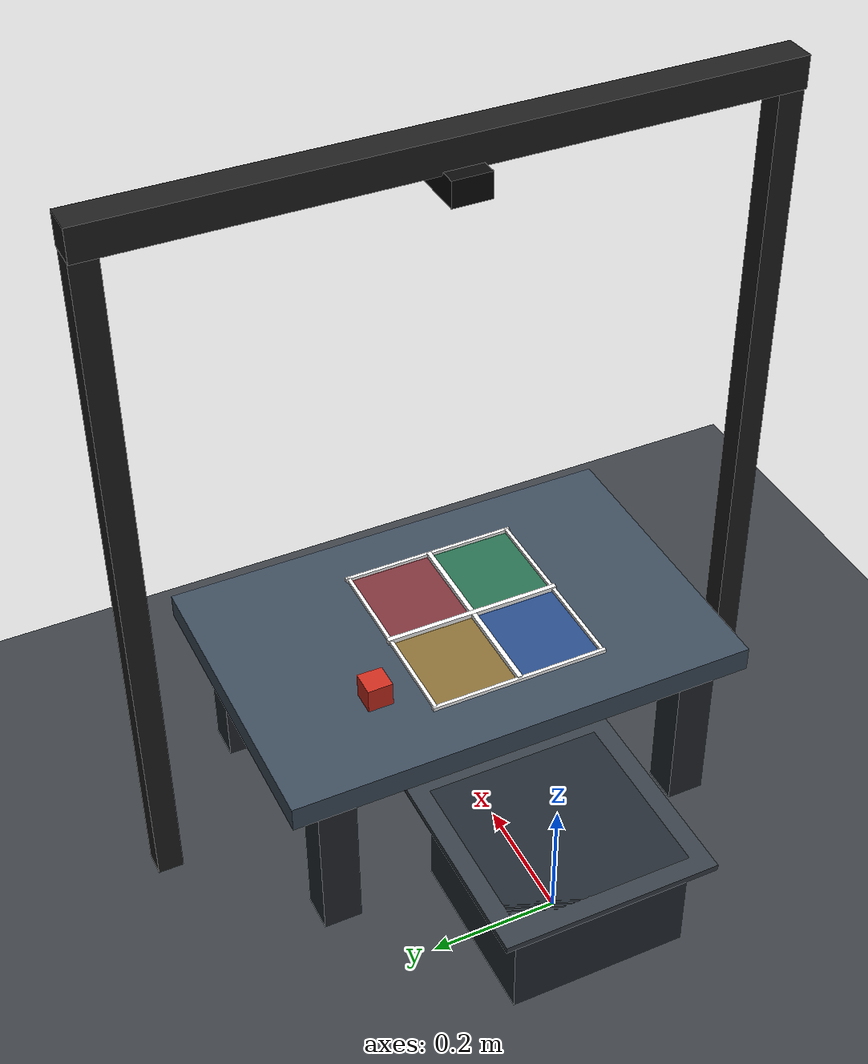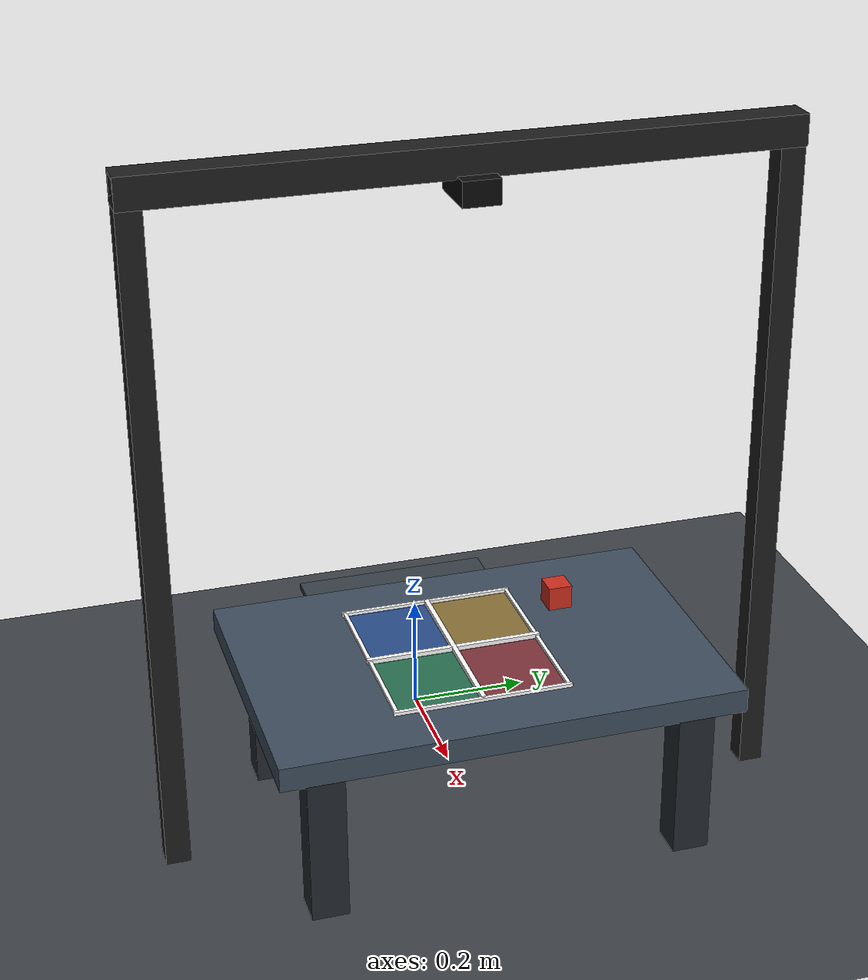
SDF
<?xml version="1.0"?>
<sdf version="1.8">
  <world name="empty">
    <physics name="1ms" type="ignored">
      <max_step_size>0.001</max_step_size>
      <real_time_factor>1.0</real_time_factor>
      <dart>
        <solver>
          <solver_type>pgs</solver_type>
        </solver>
        <collision_detector>ode</collision_detector>
      </dart>
    </physics>

    <plugin
      filename="ignition-gazebo-physics-system"
      name="gz::sim::systems::Physics"/>
    <plugin
      filename="ignition-gazebo-user-commands-system"
      name="gz::sim::systems::UserCommands"/>
    <plugin
      filename="ignition-gazebo-scene-broadcaster-system"
      name="gz::sim::systems::SceneBroadcaster"/>
    <plugin
      filename="ignition-gazebo-contact-system"
      name="gz::sim::systems::Contact"/>
    <plugin
      filename="ignition-gazebo-sensors-system"
      name="gz::sim::systems::Sensors">
      <render_engine>ogre</render_engine>
    </plugin>

    <scene>
      <ambient>0.42 0.42 0.42 1</ambient>
      <background>0.08 0.10 0.12 1</background>
      <shadows>true</shadows>
    </scene>

    <light type="directional" name="sun">
      <cast_shadows>true</cast_shadows>
      <pose>0 0 10 0 0 0</pose>
      <diffuse>0.75 0.75 0.75 1</diffuse>
      <specular>0.20 0.20 0.20 1</specular>
      <direction>-0.4 0.2 -0.9</direction>
    </light>
    <light type="point" name="work_light">
      <pose>0.45 0 1.31 0 0 0</pose>
      <cast_shadows>true</cast_shadows>
      <diffuse>0.85 0.85 0.82 1</diffuse>
      <specular>0.25 0.25 0.25 1</specular>
      <attenuation>
        <range>4.0</range>
        <constant>0.5</constant>
        <linear>0.1</linear>
        <quadratic>0.02</quadratic>
      </attenuation>
    </light>

    <model name="ground_plane">
      <static>true</static>
      <link name="link">
        <collision name="collision">
          <geometry><plane><normal>0 0 1</normal><size>6 6</size></plane></geometry>
        </collision>
        <visual name="visual">
          <geometry><plane><normal>0 0 1</normal><size>6 6</size></plane></geometry>
          <material>
            <ambient>0.20 0.22 0.24 1</ambient>
            <diffuse>0.24 0.26 0.28 1</diffuse>
          </material>
        </visual>
      </link>
    </model>

    <include>
      <uri>model://sensoragent_robot_base_frame</uri>
    </include>
    <include>
      <uri>model://sensoragent_workbench</uri>
      <pose>0.34 0 0 0 0 0</pose>
    </include>
    <include>
      <uri>model://sensoragent_target_grid_2x2</uri>
      <pose>0.34 -0.03 0.302 0 0 0</pose>
    </include>
    <include>
      <uri>model://sensoragent_rgbd_rig</uri>
    </include>

    <include>
      <uri>model://sensoragent_part_block</uri>
      <name>block_01</name>
      <pose>0.24 0.18 0.320 0 0 0</pose>
    </include>
  </world>
</sdf>

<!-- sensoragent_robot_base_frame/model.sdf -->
<sdf version="1.8">
  <model name="sensoragent_robot_base_frame">
    <static>true</static>
    <link name="pedestal">
      <collision name="body_collision">
        <pose>0 0 0.09 0 0 0</pose>
        <geometry><box><size>0.28 0.28 0.18</size></box></geometry>
      </collision>
      <visual name="body_visual">
        <pose>0 0 0.09 0 0 0</pose>
        <geometry><box><size>0.28 0.28 0.18</size></box></geometry>
        <material>
          <ambient>0.10 0.12 0.14 1</ambient>
          <diffuse>0.14 0.17 0.20 1</diffuse>
          <specular>0.30 0.30 0.30 1</specular>
        </material>
      </visual>
      <visual name="top_plate_visual">
        <pose>0 0 0.175 0 0 0</pose>
        <geometry><box><size>0.34 0.34 0.01</size></box></geometry>
        <material>
          <ambient>0.16 0.18 0.20 1</ambient>
          <diffuse>0.22 0.25 0.28 1</diffuse>
          <specular>0.45 0.45 0.45 1</specular>
        </material>
      </visual>
    </link>
  </model>
</sdf>

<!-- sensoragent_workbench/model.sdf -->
<sdf version="1.8">
  <model name="sensoragent_workbench">
    <static>true</static>
    <link name="workbench">
      <collision name="top_collision">
        <pose>0 0 0.28 0 0 0</pose>
        <geometry>
          <box>
            <size>0.5 0.75 0.04</size>
          </box>
        </geometry>
        <surface>
          <friction>
            <ode>
              <mu>20.0</mu>
              <mu2>20.0</mu2>
              <slip1>0.0</slip1>
              <slip2>0.0</slip2>
            </ode>
            <torsional>
              <coefficient>1.0</coefficient>
              <patch_radius>0.02</patch_radius>
              <surface_radius>0.02</surface_radius>
              <use_patch_radius>true</use_patch_radius>
              <ode>
                <slip>0.0</slip>
              </ode>
            </torsional>
          </friction>
        </surface>
      </collision>
      <visual name="top_visual">
        <pose>0 0 0.28 0 0 0</pose>
        <geometry>
          <box>
            <size>0.5 0.75 0.04</size>
          </box>
        </geometry>
        <material>
          <ambient>0.18 0.22 0.26 1</ambient>
          <diffuse>0.24 0.30 0.36 1</diffuse>
          <specular>0.35 0.35 0.35 1</specular>
        </material>
      </visual>

      <collision name="front_left_leg_collision">
        <pose>-0.20 0.30 0.13 0 0 0</pose>
        <geometry><box><size>0.06 0.06 0.26</size></box></geometry>
      </collision>
      <visual name="front_left_leg_visual">
        <pose>-0.20 0.30 0.13 0 0 0</pose>
        <geometry><box><size>0.06 0.06 0.26</size></box></geometry>
        <material>
          <ambient>0.10 0.12 0.14 1</ambient>
          <diffuse>0.14 0.16 0.18 1</diffuse>
        </material>
      </visual>

      <collision name="front_right_leg_collision">
        <pose>0.20 0.30 0.13 0 0 0</pose>
        <geometry><box><size>0.06 0.06 0.26</size></box></geometry>
      </collision>
      <visual name="front_right_leg_visual">
        <pose>0.20 0.30 0.13 0 0 0</pose>
        <geometry><box><size>0.06 0.06 0.26</size></box></geometry>
        <material>
          <ambient>0.10 0.12 0.14 1</ambient>
          <diffuse>0.14 0.16 0.18 1</diffuse>
        </material>
      </visual>

      <collision name="back_left_leg_collision">
        <pose>-0.20 -0.30 0.13 0 0 0</pose>
        <geometry><box><size>0.06 0.06 0.26</size></box></geometry>
      </collision>
      <visual name="back_left_leg_visual">
        <pose>-0.20 -0.30 0.13 0 0 0</pose>
        <geometry><box><size>0.06 0.06 0.26</size></box></geometry>
        <material>
          <ambient>0.10 0.12 0.14 1</ambient>
          <diffuse>0.14 0.16 0.18 1</diffuse>
        </material>
      </visual>

      <collision name="back_right_leg_collision">
        <pose>0.20 -0.30 0.13 0 0 0</pose>
        <geometry><box><size>0.06 0.06 0.26</size></box></geometry>
      </collision>
      <visual name="back_right_leg_visual">
        <pose>0.20 -0.30 0.13 0 0 0</pose>
        <geometry><box><size>0.06 0.06 0.26</size></box></geometry>
        <material>
          <ambient>0.10 0.12 0.14 1</ambient>
          <diffuse>0.14 0.16 0.18 1</diffuse>
        </material>
      </visual>
    </link>
  </model>
</sdf>

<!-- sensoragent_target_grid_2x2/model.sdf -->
<sdf version="1.8">
  <model name="sensoragent_target_grid_2x2">
    <static>true</static>
    <link name="grid">
      <visual name="area_1_visual">
        <pose>-0.08 -0.07 0.0005 0 0 0</pose>
        <geometry><plane><normal>0 0 1</normal><size>0.155 0.135</size></plane></geometry>
        <material>
          <ambient>0.10 0.34 0.80 0.45</ambient>
          <diffuse>0.10 0.34 0.80 0.45</diffuse>
        </material>
      </visual>
      <visual name="area_2_visual">
        <pose>0.08 -0.07 0.0005 0 0 0</pose>
        <geometry><plane><normal>0 0 1</normal><size>0.155 0.135</size></plane></geometry>
        <material>
          <ambient>0.10 0.65 0.30 0.45</ambient>
          <diffuse>0.10 0.65 0.30 0.45</diffuse>
        </material>
      </visual>
      <visual name="area_3_visual">
        <pose>-0.08 0.07 0.0005 0 0 0</pose>
        <geometry><plane><normal>0 0 1</normal><size>0.155 0.135</size></plane></geometry>
        <material>
          <ambient>0.95 0.65 0.08 0.45</ambient>
          <diffuse>0.95 0.65 0.08 0.45</diffuse>
        </material>
      </visual>
      <visual name="area_4_visual">
        <pose>0.08 0.07 0.0005 0 0 0</pose>
        <geometry><plane><normal>0 0 1</normal><size>0.155 0.135</size></plane></geometry>
        <material>
          <ambient>0.85 0.12 0.12 0.45</ambient>
          <diffuse>0.85 0.12 0.12 0.45</diffuse>
        </material>
      </visual>

      <visual name="outer_line_x_positive">
        <pose>0.16 0 0.003 0 0 0</pose>
        <geometry><box><size>0.006 0.29 0.006</size></box></geometry>
        <material><diffuse>1.0 1.0 1.0 1</diffuse></material>
      </visual>
      <collision name="outer_line_x_positive_collision">
        <pose>0.16 0 0.003 0 0 0</pose>
        <geometry><box><size>0.006 0.29 0.006</size></box></geometry>
      </collision>
      <visual name="outer_line_x_negative">
        <pose>-0.16 0 0.003 0 0 0</pose>
        <geometry><box><size>0.006 0.29 0.006</size></box></geometry>
        <material><diffuse>1.0 1.0 1.0 1</diffuse></material>
      </visual>
      <collision name="outer_line_x_negative_collision">
        <pose>-0.16 0 0.003 0 0 0</pose>
        <geometry><box><size>0.006 0.29 0.006</size></box></geometry>
      </collision>
      <visual name="outer_line_y_positive">
        <pose>0 0.14 0.003 0 0 0</pose>
        <geometry><box><size>0.32 0.006 0.006</size></box></geometry>
        <material><diffuse>1.0 1.0 1.0 1</diffuse></material>
      </visual>
      <collision name="outer_line_y_positive_collision">
        <pose>0 0.14 0.003 0 0 0</pose>
        <geometry><box><size>0.32 0.006 0.006</size></box></geometry>
      </collision>
      <visual name="outer_line_y_negative">
        <pose>0 -0.14 0.003 0 0 0</pose>
        <geometry><box><size>0.32 0.006 0.006</size></box></geometry>
        <material><diffuse>1.0 1.0 1.0 1</diffuse></material>
      </visual>
      <collision name="outer_line_y_negative_collision">
        <pose>0 -0.14 0.003 0 0 0</pose>
        <geometry><box><size>0.32 0.006 0.006</size></box></geometry>
      </collision>
      <visual name="center_line_x">
        <pose>0 0 0.004 0 0 0</pose>
        <geometry><box><size>0.008 0.29 0.008</size></box></geometry>
        <material><diffuse>1.0 1.0 1.0 1</diffuse></material>
      </visual>
      <collision name="center_line_x_collision">
        <pose>0 0 0.004 0 0 0</pose>
        <geometry><box><size>0.008 0.29 0.008</size></box></geometry>
      </collision>
      <visual name="center_line_y">
        <pose>0 0 0.004 0 0 0</pose>
        <geometry><box><size>0.32 0.008 0.008</size></box></geometry>
        <material><diffuse>1.0 1.0 1.0 1</diffuse></material>
      </visual>
      <collision name="center_line_y_collision">
        <pose>0 0 0.004 0 0 0</pose>
        <geometry><box><size>0.32 0.008 0.008</size></box></geometry>
      </collision>
    </link>
  </model>
</sdf>

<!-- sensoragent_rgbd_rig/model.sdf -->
<sdf version="1.8">
  <model name="sensoragent_rgbd_rig">
    <static>true</static>
    <link name="rig">
      <visual name="left_post">
        <pose>0.34 0.50 0.57 0 0 0</pose>
        <geometry><box><size>0.04 0.04 1.14</size></box></geometry>
        <material><diffuse>0.12 0.12 0.12 1</diffuse></material>
      </visual>
      <collision name="left_post_collision">
        <pose>0.34 0.50 0.57 0 0 0</pose>
        <geometry><box><size>0.04 0.04 1.14</size></box></geometry>
      </collision>
      <visual name="right_post">
        <pose>0.34 -0.50 0.57 0 0 0</pose>
        <geometry><box><size>0.04 0.04 1.14</size></box></geometry>
        <material><diffuse>0.12 0.12 0.12 1</diffuse></material>
      </visual>
      <collision name="right_post_collision">
        <pose>0.34 -0.50 0.57 0 0 0</pose>
        <geometry><box><size>0.04 0.04 1.14</size></box></geometry>
      </collision>
      <visual name="crossbar">
        <pose>0.34 0 1.12 0 0 0</pose>
        <geometry><box><size>0.05 1.04 0.05</size></box></geometry>
        <material><diffuse>0.12 0.12 0.12 1</diffuse></material>
      </visual>
      <collision name="crossbar_collision">
        <pose>0.34 0 1.12 0 0 0</pose>
        <geometry><box><size>0.05 1.04 0.05</size></box></geometry>
      </collision>
      <visual name="camera_body">
        <pose>0.34 0 1.08 0 0 0</pose>
        <geometry><box><size>0.10 0.06 0.04</size></box></geometry>
        <material><diffuse>0.04 0.04 0.04 1</diffuse></material>
      </visual>

      <sensor name="rgb_camera" type="camera">
        <pose>0.34 0 1.06 0 1.570796 0</pose>
        <always_on>true</always_on>
        <update_rate>10</update_rate>
        <topic>/industrial_camera/image</topic>
        <camera>
          <camera_info_topic>/industrial_camera/camera_info</camera_info_topic>
          <horizontal_fov>1.047</horizontal_fov>
          <image>
            <width>424</width>
            <height>240</height>
            <format>R8G8B8</format>
          </image>
          <clip>
            <near>0.10</near>
            <far>3.0</far>
          </clip>
        </camera>
      </sensor>

      <sensor name="depth_camera" type="depth_camera">
        <pose>0.34 0 1.06 0 1.570796 0</pose>
        <always_on>true</always_on>
        <update_rate>10</update_rate>
        <topic>/industrial_camera/depth_image</topic>
        <camera>
          <camera_info_topic>/industrial_camera/depth_camera_info</camera_info_topic>
          <horizontal_fov>1.047</horizontal_fov>
          <image>
            <width>424</width>
            <height>240</height>
          </image>
          <clip>
            <near>0.10</near>
            <far>3.0</far>
          </clip>
        </camera>
      </sensor>
    </link>
  </model>
</sdf>

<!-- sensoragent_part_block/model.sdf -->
<sdf version="1.8">
  <model name="sensoragent_part_block">
    <link name="part">
      <inertial>
        <mass>0.20</mass>
        <inertia>
          <ixx>0.0000533</ixx>
          <iyy>0.0000533</iyy>
          <izz>0.0000533</izz>
        </inertia>
      </inertial>
      <collision name="collision">
        <geometry><box><size>0.040 0.040 0.040</size></box></geometry>
        <surface>
          <friction>
            <ode>
              <mu>20.0</mu>
              <mu2>20.0</mu2>
            </ode>
          </friction>
          <contact>
            <ode>
              <kp>1e+5</kp>
              <kd>1</kd>
              <soft_cfm>0</soft_cfm>
              <soft_erp>0.2</soft_erp>
              <minDepth>0.002</minDepth>
              <maxVel>0</maxVel>
            </ode>
          </contact>
        </surface>
      </collision>
      <visual name="visual">
        <geometry><box><size>0.040 0.040 0.040</size></box></geometry>
        <material>
          <ambient>0.80 0.18 0.12 1</ambient>
          <diffuse>0.80 0.18 0.12 1</diffuse>
        </material>
      </visual>
    </link>
  </model>
</sdf>
